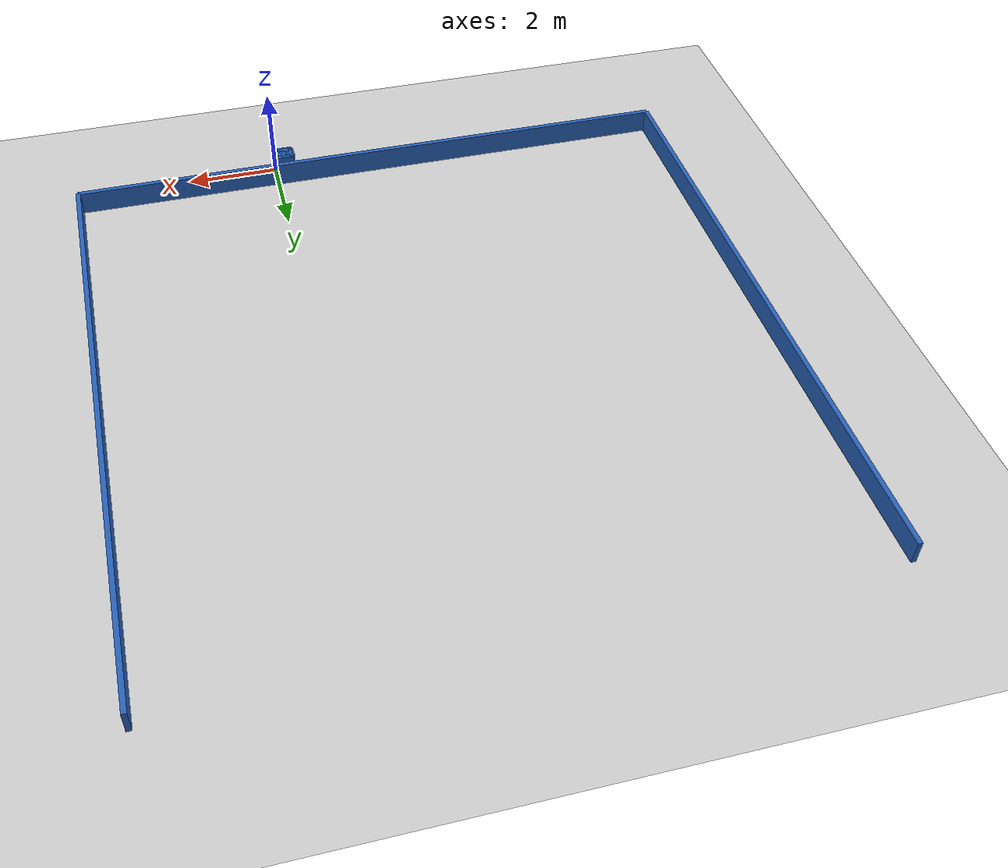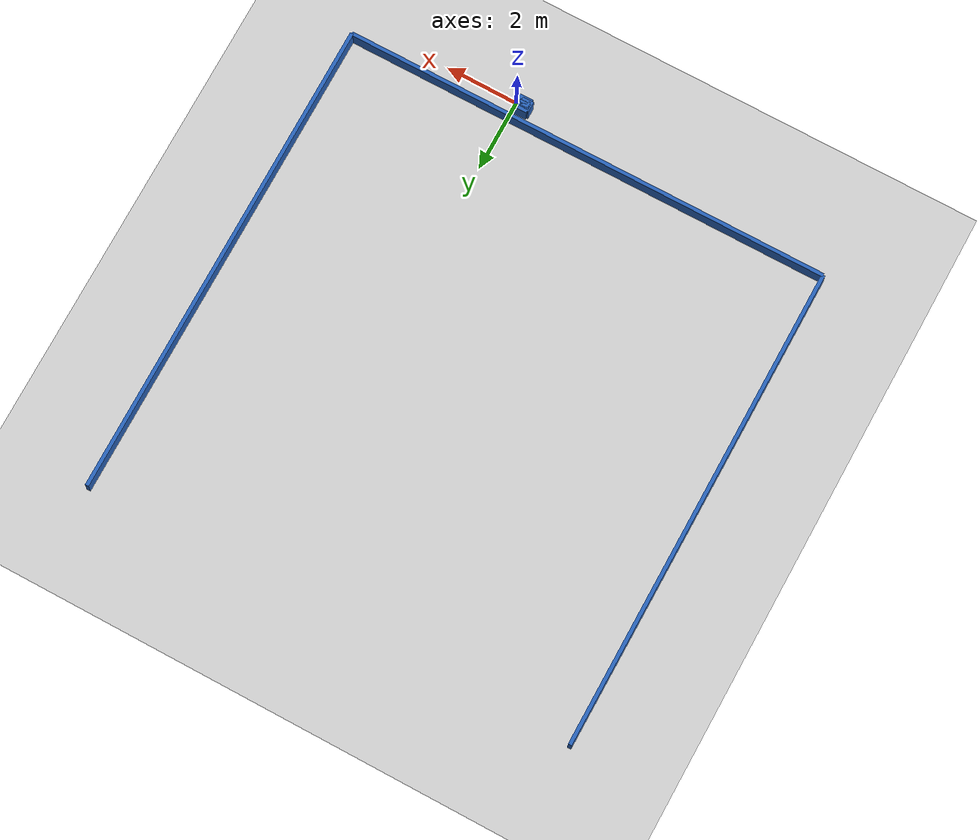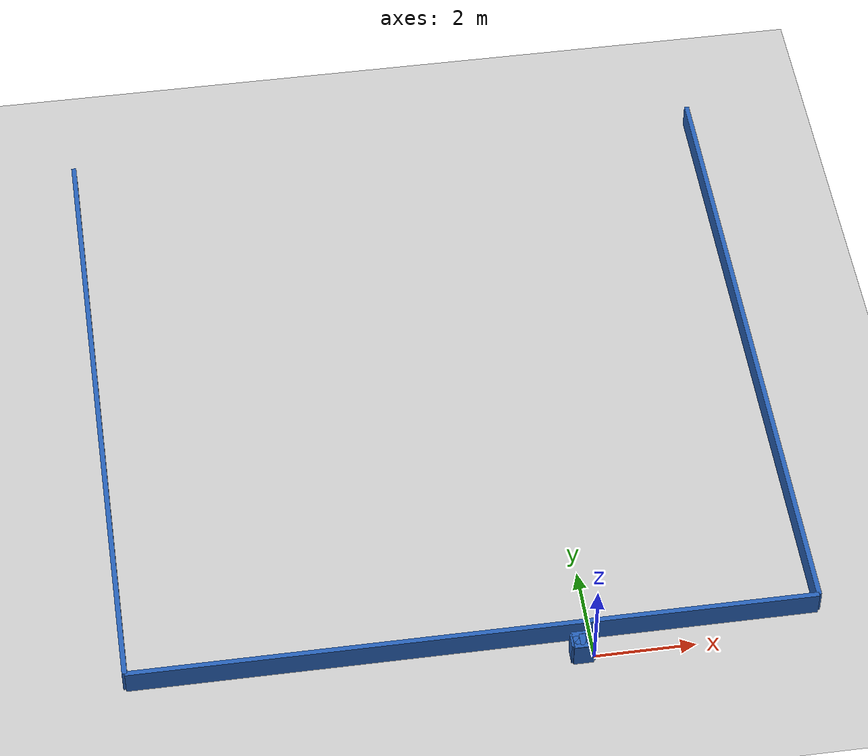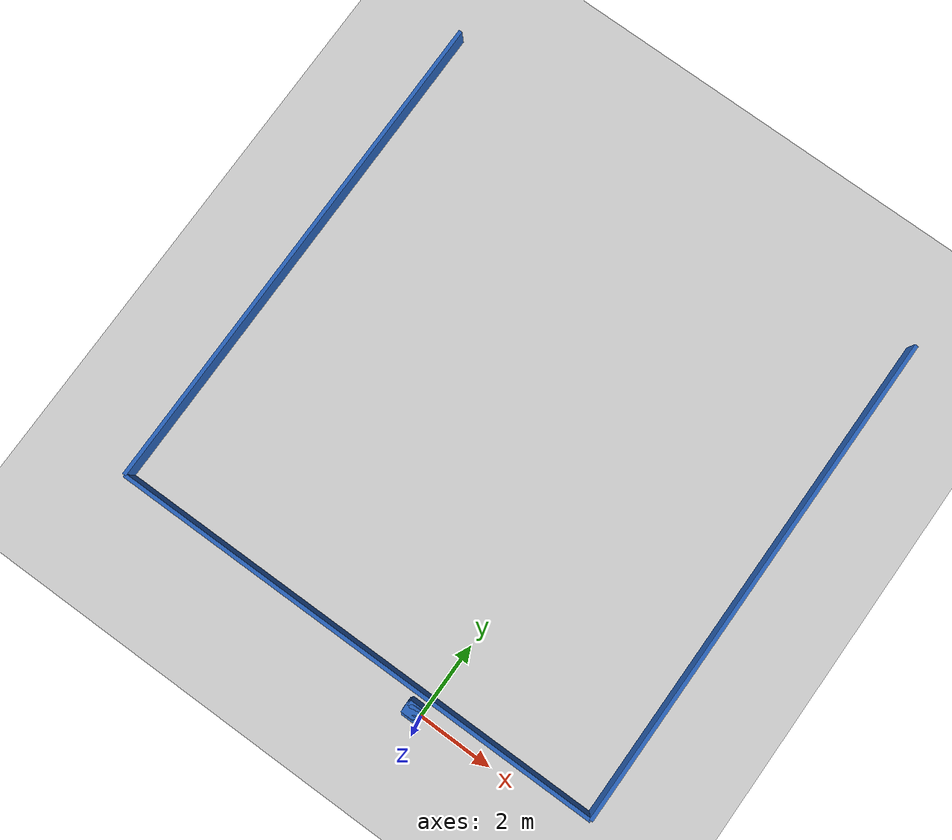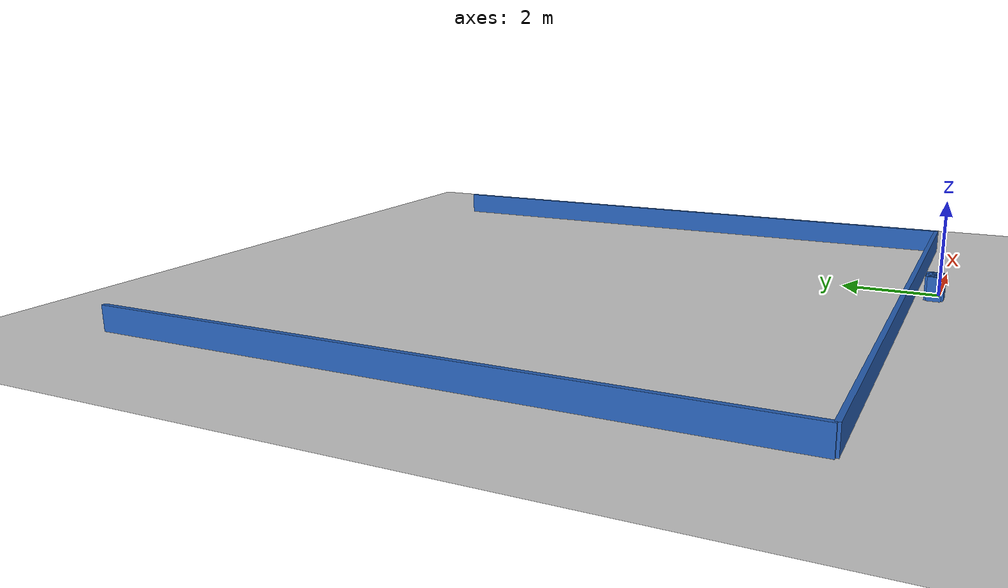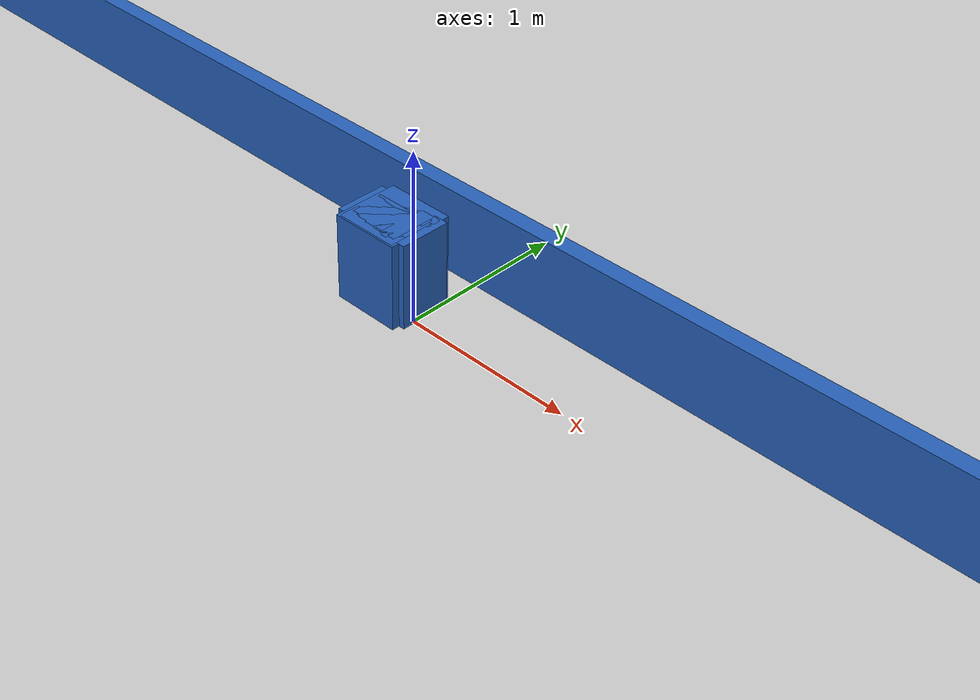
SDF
<?xml version="1.0" ?>
    <sdf version="1.5">
      <world name="default">
        <!-- A global light source -->
        <include>
          <uri>model://sun</uri>
        </include>
        <!-- A ground plane -->
        <include>
          <uri>model://ground_plane</uri>
        </include>

    <model name='libopen_space_final_T2B_85_62'>
      <static>1</static>
      <pose frame=''>-0.225000 0.075000 0.000000 0.000000 0.000000 0.000000</pose>
      <link name='link'>
        <inertial>
          <mass>1</mass>
          <inertia>
            <ixx>0.145833</ixx>
            <ixy>0</ixy>
            <ixz>0</ixz>
            <iyy>0.145833</iyy>
            <iyz>0</iyz>
            <izz>0.125</izz>
          </inertia>
        </inertial>
        <collision name='collision'>
          <geometry>
            <box>
              <size>0.40 0.39 1</size>
            </box>
          </geometry>
          <max_contacts>10</max_contacts>
          <surface>
            <contact>
              <ode/>
            </contact>
            <bounce/>
            <friction>
              <torsional>
                <ode/>
              </torsional>
              <ode/>
            </friction>
          </surface>
        </collision>
        <visual name='visual'>
          <geometry>
            <box>
              <size>0.40 0.39 1</size>
            </box>
          </geometry>
	    <material>
              <ambient>0.152000 0.379000 0.720000 1</ambient>
	      <diffuse>0.152000 0.379000 0.720000 1</diffuse>
          </material>
          <material>
            <script>
              <name>Gazebo/Grey</name>
              <uri>file://media/materials/scripts/gazebo.material</uri>
            </script>
          </material>
        </visual>
        <self_collide>0</self_collide>
        <kinematic>0</kinematic>
        <gravity>1</gravity>
      </link>
      <plugin name='libopen_space_final_T2B_85_62' filename='libopen_space_final_T2B_85_62.so'/>
    </model>

    <model name='libopen_space_final_T2B_51_1'>
      <static>1</static>
      <pose frame=''>-0.225000 0.075000 0.000000 0.000000 0.000000 0.000000</pose>
      <link name='link'>
        <inertial>
          <mass>1</mass>
          <inertia>
            <ixx>0.145833</ixx>
            <ixy>0</ixy>
            <ixz>0</ixz>
            <iyy>0.145833</iyy>
            <iyz>0</iyz>
            <izz>0.125</izz>
          </inertia>
        </inertial>
        <collision name='collision'>
          <geometry>
            <box>
              <size>0.31 0.28 1</size>
            </box>
          </geometry>
          <max_contacts>10</max_contacts>
          <surface>
            <contact>
              <ode/>
            </contact>
            <bounce/>
            <friction>
              <torsional>
                <ode/>
              </torsional>
              <ode/>
            </friction>
          </surface>
        </collision>
        <visual name='visual'>
          <geometry>
            <box>
              <size>0.31 0.28 1</size>
            </box>
          </geometry>
	    <material>
              <ambient>0.152000 0.379000 0.720000 1</ambient>
	      <diffuse>0.152000 0.379000 0.720000 1</diffuse>
          </material>
          <material>
            <script>
              <name>Gazebo/Grey</name>
              <uri>file://media/materials/scripts/gazebo.material</uri>
            </script>
          </material>
        </visual>
        <self_collide>0</self_collide>
        <kinematic>0</kinematic>
        <gravity>1</gravity>
      </link>
      <plugin name='libopen_space_final_T2B_51_1' filename='libopen_space_final_T2B_51_1.so'/>
    </model>

    <model name='libopen_space_final_T2B_148_40'>
      <static>1</static>
      <pose frame=''>-0.225000 0.075000 0.000000 0.000000 0.000000 0.000000</pose>
      <link name='link'>
        <inertial>
          <mass>1</mass>
          <inertia>
            <ixx>0.145833</ixx>
            <ixy>0</ixy>
            <ixz>0</ixz>
            <iyy>0.145833</iyy>
            <iyz>0</iyz>
            <izz>0.125</izz>
          </inertia>
        </inertial>
        <collision name='collision'>
          <geometry>
            <box>
              <size>0.22 0.13 1</size>
            </box>
          </geometry>
          <max_contacts>10</max_contacts>
          <surface>
            <contact>
              <ode/>
            </contact>
            <bounce/>
            <friction>
              <torsional>
                <ode/>
              </torsional>
              <ode/>
            </friction>
          </surface>
        </collision>
        <visual name='visual'>
          <geometry>
            <box>
              <size>0.22 0.13 1</size>
            </box>
          </geometry>
	    <material>
              <ambient>0.152000 0.379000 0.720000 1</ambient>
	      <diffuse>0.152000 0.379000 0.720000 1</diffuse>
          </material>
          <material>
            <script>
              <name>Gazebo/Grey</name>
              <uri>file://media/materials/scripts/gazebo.material</uri>
            </script>
          </material>
        </visual>
        <self_collide>0</self_collide>
        <kinematic>0</kinematic>
        <gravity>1</gravity>
      </link>
      <plugin name='libopen_space_final_T2B_148_40' filename='libopen_space_final_T2B_148_40.so'/>
    </model>

    <model name='libopen_space_final_T2B_122_30'>
      <static>1</static>
      <pose frame=''>-0.225000 0.075000 0.000000 0.000000 0.000000 0.000000</pose>
      <link name='link'>
        <inertial>
          <mass>1</mass>
          <inertia>
            <ixx>0.145833</ixx>
            <ixy>0</ixy>
            <ixz>0</ixz>
            <iyy>0.145833</iyy>
            <iyz>0</iyz>
            <izz>0.125</izz>
          </inertia>
        </inertial>
        <collision name='collision'>
          <geometry>
            <box>
              <size>0.34 0.22 1</size>
            </box>
          </geometry>
          <max_contacts>10</max_contacts>
          <surface>
            <contact>
              <ode/>
            </contact>
            <bounce/>
            <friction>
              <torsional>
                <ode/>
              </torsional>
              <ode/>
            </friction>
          </surface>
        </collision>
        <visual name='visual'>
          <geometry>
            <box>
              <size>0.34 0.22 1</size>
            </box>
          </geometry>
	    <material>
              <ambient>0.152000 0.379000 0.720000 1</ambient>
	      <diffuse>0.152000 0.379000 0.720000 1</diffuse>
          </material>
          <material>
            <script>
              <name>Gazebo/Grey</name>
              <uri>file://media/materials/scripts/gazebo.material</uri>
            </script>
          </material>
        </visual>
        <self_collide>0</self_collide>
        <kinematic>0</kinematic>
        <gravity>1</gravity>
      </link>
      <plugin name='libopen_space_final_T2B_122_30' filename='libopen_space_final_T2B_122_30.so'/>
    </model>

    <model name='libopen_space_final_T2B_83_17'>
      <static>1</static>
      <pose frame=''>-0.225000 0.075000 0.000000 0.000000 0.000000 0.000000</pose>
      <link name='link'>
        <inertial>
          <mass>1</mass>
          <inertia>
            <ixx>0.145833</ixx>
            <ixy>0</ixy>
            <ixz>0</ixz>
            <iyy>0.145833</iyy>
            <iyz>0</iyz>
            <izz>0.125</izz>
          </inertia>
        </inertial>
        <collision name='collision'>
          <geometry>
            <box>
              <size>0.47 0.30 1</size>
            </box>
          </geometry>
          <max_contacts>10</max_contacts>
          <surface>
            <contact>
              <ode/>
            </contact>
            <bounce/>
            <friction>
              <torsional>
                <ode/>
              </torsional>
              <ode/>
            </friction>
          </surface>
        </collision>
        <visual name='visual'>
          <geometry>
            <box>
              <size>0.47 0.30 1</size>
            </box>
          </geometry>
	    <material>
              <ambient>0.152000 0.379000 0.720000 1</ambient>
	      <diffuse>0.152000 0.379000 0.720000 1</diffuse>
          </material>
          <material>
            <script>
              <name>Gazebo/Grey</name>
              <uri>file://media/materials/scripts/gazebo.material</uri>
            </script>
          </material>
        </visual>
        <self_collide>0</self_collide>
        <kinematic>0</kinematic>
        <gravity>1</gravity>
      </link>
      <plugin name='libopen_space_final_T2B_83_17' filename='libopen_space_final_T2B_83_17.so'/>
    </model>

    <model name='libopen_space_final_T2B_90_95'>
      <static>1</static>
      <pose frame=''>-0.225000 0.075000 0.000000 0.000000 0.000000 0.000000</pose>
      <link name='link'>
        <inertial>
          <mass>1</mass>
          <inertia>
            <ixx>0.145833</ixx>
            <ixy>0</ixy>
            <ixz>0</ixz>
            <iyy>0.145833</iyy>
            <iyz>0</iyz>
            <izz>0.125</izz>
          </inertia>
        </inertial>
        <collision name='collision'>
          <geometry>
            <box>
              <size>0.33 0.21 1</size>
            </box>
          </geometry>
          <max_contacts>10</max_contacts>
          <surface>
            <contact>
              <ode/>
            </contact>
            <bounce/>
            <friction>
              <torsional>
                <ode/>
              </torsional>
              <ode/>
            </friction>
          </surface>
        </collision>
        <visual name='visual'>
          <geometry>
            <box>
              <size>0.33 0.21 1</size>
            </box>
          </geometry>
	    <material>
              <ambient>0.152000 0.379000 0.720000 1</ambient>
	      <diffuse>0.152000 0.379000 0.720000 1</diffuse>
          </material>
          <material>
            <script>
              <name>Gazebo/Grey</name>
              <uri>file://media/materials/scripts/gazebo.material</uri>
            </script>
          </material>
        </visual>
        <self_collide>0</self_collide>
        <kinematic>0</kinematic>
        <gravity>1</gravity>
      </link>
      <plugin name='libopen_space_final_T2B_90_95' filename='libopen_space_final_T2B_90_95.so'/>
    </model>

    <model name='libopen_space_final_T2B_96_0'>
      <static>1</static>
      <pose frame=''>-0.225000 0.075000 0.000000 0.000000 0.000000 0.000000</pose>
      <link name='link'>
        <inertial>
          <mass>1</mass>
          <inertia>
            <ixx>0.145833</ixx>
            <ixy>0</ixy>
            <ixz>0</ixz>
            <iyy>0.145833</iyy>
            <iyz>0</iyz>
            <izz>0.125</izz>
          </inertia>
        </inertial>
        <collision name='collision'>
          <geometry>
            <box>
              <size>0.37 0.37 1</size>
            </box>
          </geometry>
          <max_contacts>10</max_contacts>
          <surface>
            <contact>
              <ode/>
            </contact>
            <bounce/>
            <friction>
              <torsional>
                <ode/>
              </torsional>
              <ode/>
            </friction>
          </surface>
        </collision>
        <visual name='visual'>
          <geometry>
            <box>
              <size>0.37 0.37 1</size>
            </box>
          </geometry>
	    <material>
              <ambient>0.152000 0.379000 0.720000 1</ambient>
	      <diffuse>0.152000 0.379000 0.720000 1</diffuse>
          </material>
          <material>
            <script>
              <name>Gazebo/Grey</name>
              <uri>file://media/materials/scripts/gazebo.material</uri>
            </script>
          </material>
        </visual>
        <self_collide>0</self_collide>
        <kinematic>0</kinematic>
        <gravity>1</gravity>
      </link>
      <plugin name='libopen_space_final_T2B_96_0' filename='libopen_space_final_T2B_96_0.so'/>
    </model>

    <model name='libopen_space_final_T2B_134_32'>
      <static>1</static>
      <pose frame=''>-0.225000 0.075000 0.000000 0.000000 0.000000 0.000000</pose>
      <link name='link'>
        <inertial>
          <mass>1</mass>
          <inertia>
            <ixx>0.145833</ixx>
            <ixy>0</ixy>
            <ixz>0</ixz>
            <iyy>0.145833</iyy>
            <iyz>0</iyz>
            <izz>0.125</izz>
          </inertia>
        </inertial>
        <collision name='collision'>
          <geometry>
            <box>
              <size>0.23 0.31 1</size>
            </box>
          </geometry>
          <max_contacts>10</max_contacts>
          <surface>
            <contact>
              <ode/>
            </contact>
            <bounce/>
            <friction>
              <torsional>
                <ode/>
              </torsional>
              <ode/>
            </friction>
          </surface>
        </collision>
        <visual name='visual'>
          <geometry>
            <box>
              <size>0.23 0.31 1</size>
            </box>
          </geometry>
	    <material>
              <ambient>0.152000 0.379000 0.720000 1</ambient>
	      <diffuse>0.152000 0.379000 0.720000 1</diffuse>
          </material>
          <material>
            <script>
              <name>Gazebo/Grey</name>
              <uri>file://media/materials/scripts/gazebo.material</uri>
            </script>
          </material>
        </visual>
        <self_collide>0</self_collide>
        <kinematic>0</kinematic>
        <gravity>1</gravity>
      </link>
      <plugin name='libopen_space_final_T2B_134_32' filename='libopen_space_final_T2B_134_32.so'/>
    </model>

    <model name='libopen_space_final_T2B_81_89'>
      <static>1</static>
      <pose frame=''>-0.225000 0.075000 0.000000 0.000000 0.000000 0.000000</pose>
      <link name='link'>
        <inertial>
          <mass>1</mass>
          <inertia>
            <ixx>0.145833</ixx>
            <ixy>0</ixy>
            <ixz>0</ixz>
            <iyy>0.145833</iyy>
            <iyz>0</iyz>
            <izz>0.125</izz>
          </inertia>
        </inertial>
        <collision name='collision'>
          <geometry>
            <box>
              <size>0.12 0.26 1</size>
            </box>
          </geometry>
          <max_contacts>10</max_contacts>
          <surface>
            <contact>
              <ode/>
            </contact>
            <bounce/>
            <friction>
              <torsional>
                <ode/>
              </torsional>
              <ode/>
            </friction>
          </surface>
        </collision>
        <visual name='visual'>
          <geometry>
            <box>
              <size>0.12 0.26 1</size>
            </box>
          </geometry>
	    <material>
              <ambient>0.152000 0.379000 0.720000 1</ambient>
	      <diffuse>0.152000 0.379000 0.720000 1</diffuse>
          </material>
          <material>
            <script>
              <name>Gazebo/Grey</name>
              <uri>file://media/materials/scripts/gazebo.material</uri>
            </script>
          </material>
        </visual>
        <self_collide>0</self_collide>
        <kinematic>0</kinematic>
        <gravity>1</gravity>
      </link>
      <plugin name='libopen_space_final_T2B_81_89' filename='libopen_space_final_T2B_81_89.so'/>
    </model>

    <model name='libopen_space_final_T2B_118_50'>
      <static>1</static>
      <pose frame=''>-0.225000 0.075000 0.000000 0.000000 0.000000 0.000000</pose>
      <link name='link'>
        <inertial>
          <mass>1</mass>
          <inertia>
            <ixx>0.145833</ixx>
            <ixy>0</ixy>
            <ixz>0</ixz>
            <iyy>0.145833</iyy>
            <iyz>0</iyz>
            <izz>0.125</izz>
          </inertia>
        </inertial>
        <collision name='collision'>
          <geometry>
            <box>
              <size>0.37 0.18 1</size>
            </box>
          </geometry>
          <max_contacts>10</max_contacts>
          <surface>
            <contact>
              <ode/>
            </contact>
            <bounce/>
            <friction>
              <torsional>
                <ode/>
              </torsional>
              <ode/>
            </friction>
          </surface>
        </collision>
        <visual name='visual'>
          <geometry>
            <box>
              <size>0.37 0.18 1</size>
            </box>
          </geometry>
	    <material>
              <ambient>0.152000 0.379000 0.720000 1</ambient>
	      <diffuse>0.152000 0.379000 0.720000 1</diffuse>
          </material>
          <material>
            <script>
              <name>Gazebo/Grey</name>
              <uri>file://media/materials/scripts/gazebo.material</uri>
            </script>
          </material>
        </visual>
        <self_collide>0</self_collide>
        <kinematic>0</kinematic>
        <gravity>1</gravity>
      </link>
      <plugin name='libopen_space_final_T2B_118_50' filename='libopen_space_final_T2B_118_50.so'/>
    </model>

        <model name='bottom_wall'>
          <static>1</static>
          <pose frame=''>-2.25 0.5 0.000000 0.000000 0.000000 1.57079632</pose>
          <link name='link'>
            <inertial>
            <mass>1</mass>
            <inertia>
              <ixx>0.145833</ixx>
              <ixy>0</ixy>
              <ixz>0</ixz>
              <iyy>0.145833</iyy>
              <iyz>0</iyz>
              <izz>0.125</izz>
            </inertia>
            </inertial>
            <collision name='collision'>
            <geometry>
              <box>
              <size>0.1 13.5 1</size>
              </box>
            </geometry>
            <max_contacts>10</max_contacts>
            <surface>
              <contact>
              <ode/>
              </contact>
              <bounce/>
              <friction>
              <torsional>
                <ode/>
              </torsional>
              <ode/>
              </friction>
            </surface>
            </collision>
            <visual name='visual'>
            <geometry>
              <box>
              <size>0.1 13.5 1</size>
              </box>
            </geometry>
            <material>
              <ambient>0.152000 0.379000 0.720000 1</ambient>
            <diffuse>0.152000 0.379000 0.720000 1</diffuse>
            </material>
            <material>
              <script>
              <name>Gazebo/Grey</name>
              <uri>file://media/materials/scripts/gazebo.material</uri>
              </script>
            </material>
            </visual>
            <self_collide>0</self_collide>
            <kinematic>0</kinematic>
            <gravity>1</gravity>
          </link>
        </model>

        <model name='left_wall'>
          <static>1</static>
          <pose frame=''>-9 7.25 0.000000 0.000000 0.000000 0.000000</pose>
          <link name='link'>
            <inertial>
            <mass>1</mass>
            <inertia>
              <ixx>0.145833</ixx>
              <ixy>0</ixy>
              <ixz>0</ixz>
              <iyy>0.145833</iyy>
              <iyz>0</iyz>
              <izz>0.125</izz>
            </inertia>
            </inertial>
            <collision name='collision'>
            <geometry>
              <box>
              <size>0.1 13.5 1</size>
              </box>
            </geometry>
            <max_contacts>10</max_contacts>
            <surface>
              <contact>
              <ode/>
              </contact>
              <bounce/>
              <friction>
              <torsional>
                <ode/>
              </torsional>
              <ode/>
              </friction>
            </surface>
            </collision>
            <visual name='visual'>
            <geometry>
              <box>
              <size>0.1 13.5 1</size>
              </box>
            </geometry>
            <material>
              <ambient>0.152000 0.379000 0.720000 1</ambient>
            <diffuse>0.152000 0.379000 0.720000 1</diffuse>
            </material>
            <material>
              <script>
              <name>Gazebo/Grey</name>
              <uri>file://media/materials/scripts/gazebo.material</uri>
              </script>
            </material>
            </visual>
            <self_collide>0</self_collide>
            <kinematic>0</kinematic>
            <gravity>1</gravity>
          </link>
        </model>

        <model name='right_wall'>
          <static>1</static>
          <pose frame=''>4.5 7.25 0.000000 0.000000 0.000000 0.000000</pose>
          <link name='link'>
            <inertial>
            <mass>1</mass>
            <inertia>
              <ixx>0.145833</ixx>
              <ixy>0</ixy>
              <ixz>0</ixz>
              <iyy>0.145833</iyy>
              <iyz>0</iyz>
              <izz>0.125</izz>
            </inertia>
            </inertial>
            <collision name='collision'>
            <geometry>
              <box>
              <size>0.1 13.5 1</size>
              </box>
            </geometry>
            <max_contacts>10</max_contacts>
            <surface>
              <contact>
              <ode/>
              </contact>
              <bounce/>
              <friction>
              <torsional>
                <ode/>
              </torsional>
              <ode/>
              </friction>
            </surface>
            </collision>
            <visual name='visual'>
            <geometry>
              <box>
              <size>0.1 13.5 1</size>
              </box>
            </geometry>
            <material>
              <ambient>0.152000 0.379000 0.720000 1</ambient>
            <diffuse>0.152000 0.379000 0.720000 1</diffuse>
            </material>
            <material>
              <script>
              <name>Gazebo/Grey</name>
              <uri>file://media/materials/scripts/gazebo.material</uri>
              </script>
            </material>
            </visual>
            <self_collide>0</self_collide>
            <kinematic>0</kinematic>
            <gravity>1</gravity>
          </link>
        </model>

      </world>
    </sdf>"
